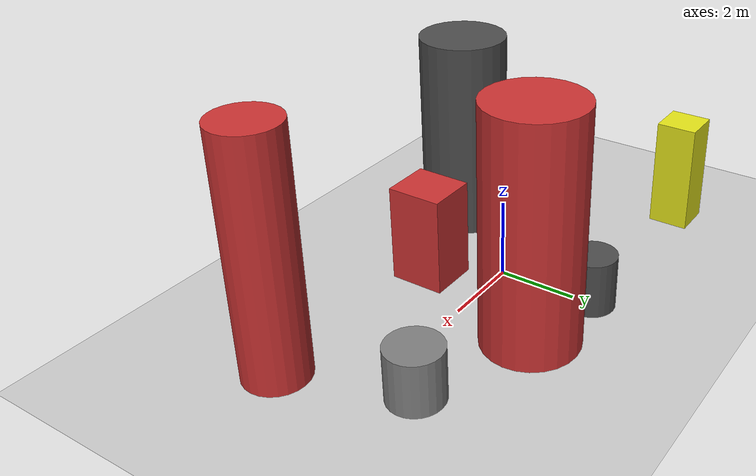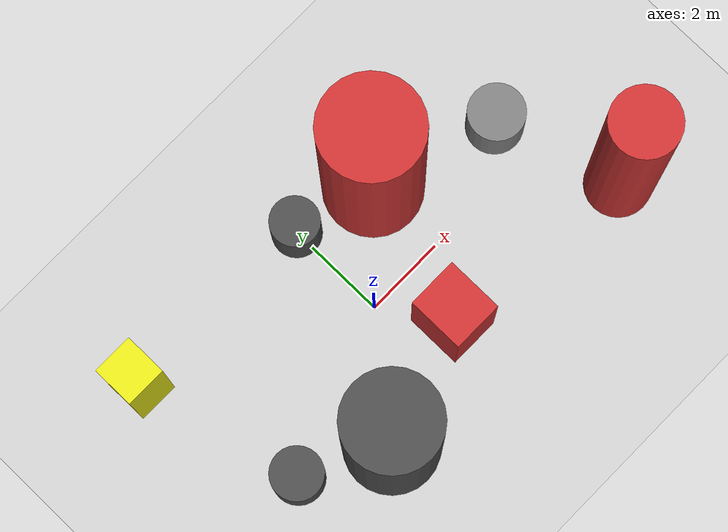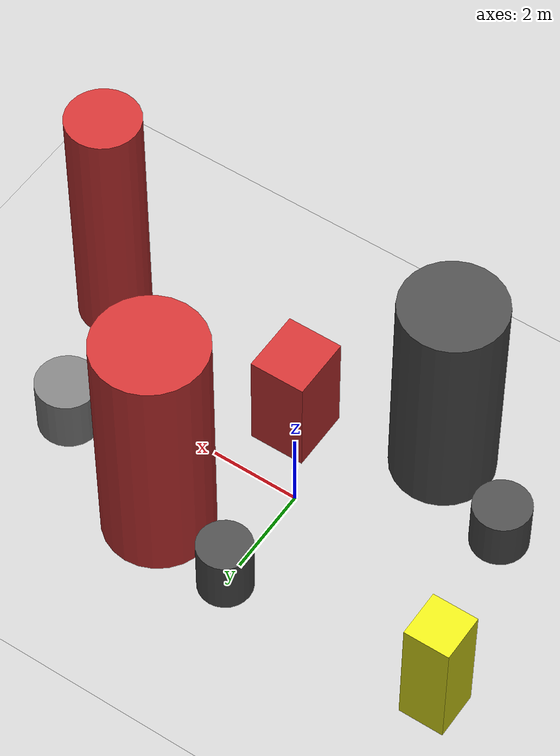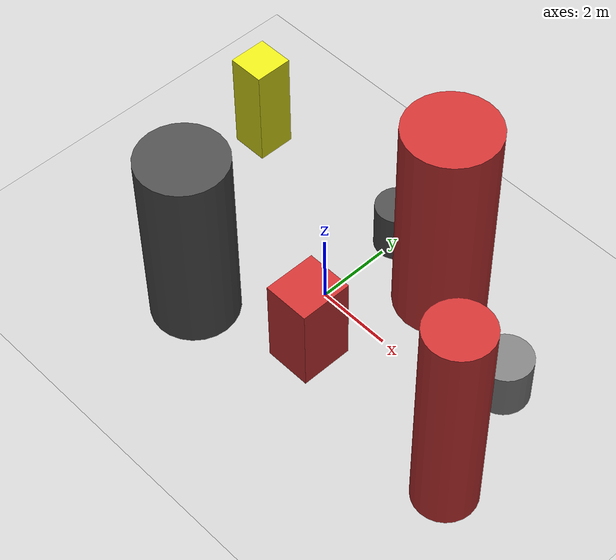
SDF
<?xml version='1.0'?>
<sdf version='1.6'>
  <world name='routeA_rl_v1__support_expansion__rl_test__mixed_3d_low_density_route__000171'>
    <!-- Sun light -->
    <light name='sun' type='directional'>
      <cast_shadows>1</cast_shadows>
      <pose>0 0 10 0 0 0</pose>
      <diffuse>0.8 0.8 0.8 1</diffuse>
      <specular>0.2 0.2 0.2 1</specular>
      <attenuation>
        <range>1000</range>
        <constant>0.9</constant>
        <linear>0.01</linear>
        <quadratic>0.001</quadratic>
      </attenuation>
      <direction>-0.5 0.1 -0.9</direction>
    </light>

    <!-- Ground plane -->
    <model name='ground_plane'>
      <static>1</static>
      <link name='link'>
        <collision name='collision'>
          <geometry>
            <plane>
              <normal>0 0 1</normal>
              <size>100 100</size>
            </plane>
          </geometry>
          <surface>
            <contact>
              <collide_bitmask>65535</collide_bitmask>
              <ode/>
            </contact>
            <friction>
              <ode>
                <mu>100</mu>
                <mu2>50</mu2>
              </ode>
              <torsional><ode/></torsional>
            </friction>
            <bounce/>
          </surface>
          <max_contacts>10</max_contacts>
        </collision>
        <visual name='visual'>
          <cast_shadows>0</cast_shadows>
          <geometry>
            <plane>
              <normal>0 0 1</normal>
              <size>100 100</size>
            </plane>
          </geometry>
          <material>
            <script>
              <uri>file://media/materials/scripts/gazebo.material</uri>
              <n>Gazebo/Grey</n>
            </script>
          </material>
        </visual>
      </link>
    </model>

    <!-- Environment -->
    <magnetic_field>6e-06 2.3e-05 -4.2e-05</magnetic_field>
    <atmosphere type='adiabatic'/>
    <physics name='default_physics' default='0' type='ode'>
      <gravity>0 0 -9.8</gravity>
      <max_step_size>0.004</max_step_size>
      <real_time_factor>1</real_time_factor>
      <real_time_update_rate>250</real_time_update_rate>
    </physics>
    <scene>
      <ambient>0.4 0.4 0.4 1</ambient>
      <background>0.7 0.7 0.7 1</background>
      <shadows>1</shadows>
    </scene>
    <wind/>
    <spherical_coordinates>
      <surface_model>EARTH_WGS84</surface_model>
      <latitude_deg>0</latitude_deg>
      <longitude_deg>0</longitude_deg>
      <elevation>0</elevation>
      <heading_deg>0</heading_deg>
    </spherical_coordinates>

    <!-- ============ OBSTACLES (8) ============ -->
    <model name='low_obs_0'>
      <static>1</static>
      <link name='link'>
        <visual name='visual'>
          <geometry>
            <cylinder>
              <radius>0.6265</radius>
              <length>1.2346</length>
            </cylinder>
          </geometry>
          <material>
            <script>
              <n>Gazebo/DarkGrey</n>
              <uri>file://media/materials/scripts/gazebo.material</uri>
            </script>
            <ambient>0.3 0.3 0.3 1</ambient>
          </material>
        </visual>
        <collision name='collision'>
          <geometry>
            <cylinder>
              <radius>0.6265</radius>
              <length>1.2346</length>
            </cylinder>
          </geometry>
          <max_contacts>10</max_contacts>
          <surface>
            <contact><ode/></contact>
            <bounce/>
            <friction>
              <ode><mu>1</mu><mu2>1</mu2></ode>
              <torsional><ode/></torsional>
            </friction>
          </surface>
        </collision>
      </link>
      <pose>-4.0000 -1.5000 0.6173 0 0 0.0000</pose>
    </model>

    <model name='low_obs_1'>
      <static>1</static>
      <link name='link'>
        <visual name='visual'>
          <geometry>
            <cylinder>
              <radius>0.5917</radius>
              <length>1.4008</length>
            </cylinder>
          </geometry>
          <material>
            <script>
              <n>Gazebo/DarkGrey</n>
              <uri>file://media/materials/scripts/gazebo.material</uri>
            </script>
            <ambient>0.3 0.3 0.3 1</ambient>
          </material>
        </visual>
        <collision name='collision'>
          <geometry>
            <cylinder>
              <radius>0.5917</radius>
              <length>1.4008</length>
            </cylinder>
          </geometry>
          <max_contacts>10</max_contacts>
          <surface>
            <contact><ode/></contact>
            <bounce/>
            <friction>
              <ode><mu>1</mu><mu2>1</mu2></ode>
              <torsional><ode/></torsional>
            </friction>
          </surface>
        </collision>
      </link>
      <pose>0.0000 2.5000 0.7004 0 0 0.0000</pose>
    </model>

    <model name='low_obs_2'>
      <static>1</static>
      <link name='link'>
        <visual name='visual'>
          <geometry>
            <cylinder>
              <radius>0.6845</radius>
              <length>1.3388</length>
            </cylinder>
          </geometry>
          <material>
            <script>
              <n>Gazebo/Grey</n>
              <uri>file://media/materials/scripts/gazebo.material</uri>
            </script>
            <ambient>0.5 0.5 0.5 1</ambient>
          </material>
        </visual>
        <collision name='collision'>
          <geometry>
            <cylinder>
              <radius>0.6845</radius>
              <length>1.3388</length>
            </cylinder>
          </geometry>
          <max_contacts>10</max_contacts>
          <surface>
            <contact><ode/></contact>
            <bounce/>
            <friction>
              <ode><mu>1</mu><mu2>1</mu2></ode>
              <torsional><ode/></torsional>
            </friction>
          </surface>
        </collision>
      </link>
      <pose>5.0000 1.0000 0.6694 0 0 0.0000</pose>
    </model>

    <model name='tall_obs_0'>
      <static>1</static>
      <link name='link'>
        <visual name='visual'>
          <geometry>
            <cylinder>
              <radius>1.1330</radius>
              <length>5.2108</length>
            </cylinder>
          </geometry>
          <material>
            <script>
              <n>Gazebo/DarkGrey</n>
              <uri>file://media/materials/scripts/gazebo.material</uri>
            </script>
            <ambient>0.3 0.3 0.3 1</ambient>
          </material>
        </visual>
        <collision name='collision'>
          <geometry>
            <cylinder>
              <radius>1.1330</radius>
              <length>5.2108</length>
            </cylinder>
          </geometry>
          <max_contacts>10</max_contacts>
          <surface>
            <contact><ode/></contact>
            <bounce/>
            <friction>
              <ode><mu>1</mu><mu2>1</mu2></ode>
              <torsional><ode/></torsional>
            </friction>
          </surface>
        </collision>
      </link>
      <pose>-2.0000 -2.5000 2.6054 0 0 0.0000</pose>
    </model>

    <model name='tall_obs_1'>
      <static>1</static>
      <link name='link'>
        <visual name='visual'>
          <geometry>
            <cylinder>
              <radius>1.1988</radius>
              <length>5.9216</length>
            </cylinder>
          </geometry>
          <material>
            <script>
              <n>Gazebo/Red</n>
              <uri>file://media/materials/scripts/gazebo.material</uri>
            </script>
            <ambient>0.8 0.2 0.2 1</ambient>
          </material>
        </visual>
        <collision name='collision'>
          <geometry>
            <cylinder>
              <radius>1.1988</radius>
              <length>5.9216</length>
            </cylinder>
          </geometry>
          <max_contacts>10</max_contacts>
          <surface>
            <contact><ode/></contact>
            <bounce/>
            <friction>
              <ode><mu>1</mu><mu2>1</mu2></ode>
              <torsional><ode/></torsional>
            </friction>
          </surface>
        </collision>
      </link>
      <pose>2.0000 2.0000 2.9608 0 0 0.0000</pose>
    </model>

    <model name='tall_obs_2'>
      <static>1</static>
      <link name='link'>
        <visual name='visual'>
          <geometry>
            <cylinder>
              <radius>0.8047</radius>
              <length>6.0532</length>
            </cylinder>
          </geometry>
          <material>
            <script>
              <n>Gazebo/Red</n>
              <uri>file://media/materials/scripts/gazebo.material</uri>
            </script>
            <ambient>0.8 0.2 0.2 1</ambient>
          </material>
        </visual>
        <collision name='collision'>
          <geometry>
            <cylinder>
              <radius>0.8047</radius>
              <length>6.0532</length>
            </cylinder>
          </geometry>
          <max_contacts>10</max_contacts>
          <surface>
            <contact><ode/></contact>
            <bounce/>
            <friction>
              <ode><mu>1</mu><mu2>1</mu2></ode>
              <torsional><ode/></torsional>
            </friction>
          </surface>
        </collision>
      </link>
      <pose>6.0000 -2.0000 3.0266 0 0 0.0000</pose>
    </model>

    <model name='med_obs_0'>
      <static>1</static>
      <link name='link'>
        <visual name='visual'>
          <geometry>
            <box>
              <size>1.0091 1.0394 2.8816</size>
            </box>
          </geometry>
          <material>
            <script>
              <n>Gazebo/Yellow</n>
              <uri>file://media/materials/scripts/gazebo.material</uri>
            </script>
            <ambient>0.9 0.9 0.1 1</ambient>
          </material>
        </visual>
        <collision name='collision'>
          <geometry>
            <box>
              <size>1.0091 1.0394 2.8816</size>
            </box>
          </geometry>
          <max_contacts>10</max_contacts>
          <surface>
            <contact><ode/></contact>
            <bounce/>
            <friction>
              <ode><mu>1</mu><mu2>1</mu2></ode>
              <torsional><ode/></torsional>
            </friction>
          </surface>
        </collision>
      </link>
      <pose>-5.0000 2.5000 1.4408 0 0 0.0000</pose>
    </model>

    <model name='med_obs_1'>
      <static>1</static>
      <link name='link'>
        <visual name='visual'>
          <geometry>
            <box>
              <size>1.2568 1.4055 2.5039</size>
            </box>
          </geometry>
          <material>
            <script>
              <n>Gazebo/Red</n>
              <uri>file://media/materials/scripts/gazebo.material</uri>
            </script>
            <ambient>0.8 0.2 0.2 1</ambient>
          </material>
        </visual>
        <collision name='collision'>
          <geometry>
            <box>
              <size>1.2568 1.4055 2.5039</size>
            </box>
          </geometry>
          <max_contacts>10</max_contacts>
          <surface>
            <contact><ode/></contact>
            <bounce/>
            <friction>
              <ode><mu>1</mu><mu2>1</mu2></ode>
              <torsional><ode/></torsional>
            </friction>
          </surface>
        </collision>
      </link>
      <pose>1.0000 -1.5000 1.2519 0 0 0.0000</pose>
    </model>

    <!-- GUI camera -->
    <gui fullscreen='0'>
      <camera name='user_camera'>
        <pose>-15 0 18 0 0.85 0.15</pose>
        <view_controller>orbit</view_controller>
        <projection_type>perspective</projection_type>
      </camera>
    </gui>
  </world>
</sdf>
